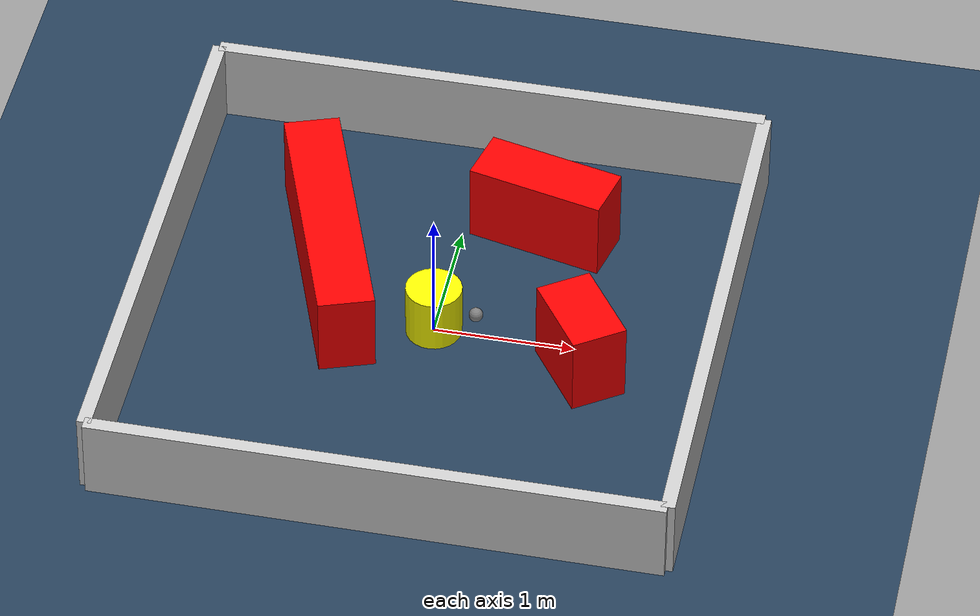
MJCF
<?xml version="1.0" ?>
<mujoco model="generated_environment">
  <option timestep="0.01" integrator="RK4" cone="elliptic"/>
  <default>
    <geom density="1"/>
  </default>
  <asset>
    <texture builtin="gradient" height="3072" rgb1="0.3 0.5 0.7" rgb2="0 0 0" type="skybox" width="512"/>
    <texture builtin="checker" height="300" mark="edge" markrgb="0.8 0.8 0.8" name="groundplane" rgb1="0.2 0.3 0.4" rgb2="0.1 0.2 0.3" type="2d" width="300"/>
    <material name="groundplane" reflectance="0.2" texrepeat="5 5" texture="groundplane" texuniform="true"/>
    <material name="robot" rgba="0.0 1.0 0.0 1"/>
  </asset>
  <worldbody>
    <light dir="0 0 -1" directional="true" pos="0 0 1.5"/>
    <geom condim="4" friction="1.0 0.005 0.001" material="groundplane" name="floor" size="0 0 0.05" type="plane"/>
    <body name="walls">
      <geom name="wall_1" condim="4" pos="-2.0 0.0 0.3" rgba="0.800000011920929 0.800000011920929 0.800000011920929 1.0" size="0.05 2.0 0.3" type="box"/>
      <geom name="wall_2" condim="4" pos="2.0 0.0 0.3" rgba="0.800000011920929 0.800000011920929 0.800000011920929 1.0" size="0.05 2.0 0.3" type="box"/>
      <geom name="wall_3" condim="4" pos="0.0 -2.0 0.3" rgba="0.800000011920929 0.800000011920929 0.800000011920929 1.0" size="2.0 0.05 0.3" type="box"/>
      <geom name="wall_4" condim="4" pos="0.0 2.0 0.3" rgba="0.800000011920929 0.800000011920929 0.800000011920929 1.0" size="2.0 0.05 0.3" type="box"/>
    </body>
    <body name="robot">
      <joint name="joint_x" type="slide" pos="0 0 0" axis="1 0 0"/>
      <joint name="joint_y" type="slide" pos="0 0 0" axis="0 1 0"/>
      <geom name="robot" type="sphere" pos="0.3 0.0 0.2" size="0.05" mass="5." friction="1.0 0.005 0.0001" condim="4" rgba="0.5 0.5 0.5 1.0"/>
      <site name="sensor_ball"/>
    </body>
    <body name="obstacle_movable_1">
      <geom name="obstacle_movable_1" condim="4" pos="0.0 0.0 0.2" euler="0 0 0.0" friction="1.0 0.005 0.001" rgba="1.0 1.0 0.0 1.0" size="0.2 0.2 0.0" type="cylinder" mass="0.1"/>
      <joint type="free"/>
    </body>
    <body name="obstacle_2_static">
      <geom name="obstacle_2_static" condim="4" pos="0.576675930705524 1.1116253174532862 0.3" euler="0 0 346.57844784724455" friction="1.0 0.005 0.001" rgba="1 0 0 1" size="0.49772511828904037 0.2 0.3" type="box"/>
    </body>
    <body name="obstacle_3_static">
      <geom name="obstacle_3_static" condim="4" pos="1.0828022372729695 -0.2186750050536821 0.3" euler="0 0 304.362408172133" friction="1.0 0.005 0.001" rgba="1 0 0 1" size="0.31576797390400185 0.2 0.3" type="box"/>
    </body>
    <body name="obstacle_4_static">
      <geom name="obstacle_4_static" condim="4" pos="-0.8422546392462156 0.42203420767246524 0.3" euler="0 0 289.6911586667287" friction="1.0 0.005 0.001" rgba="1 0 0 1" size="0.9701696704733274 0.2 0.3" type="box"/>
    </body>
  </worldbody>
  <actuator>
    <motor name="actuator_x" joint="joint_x" gear="1" ctrlrange="-1 1"/>
    <motor name="actuator_y" joint="joint_y" gear="1" ctrlrange="-1 1"/>
  </actuator>
</mujoco>
